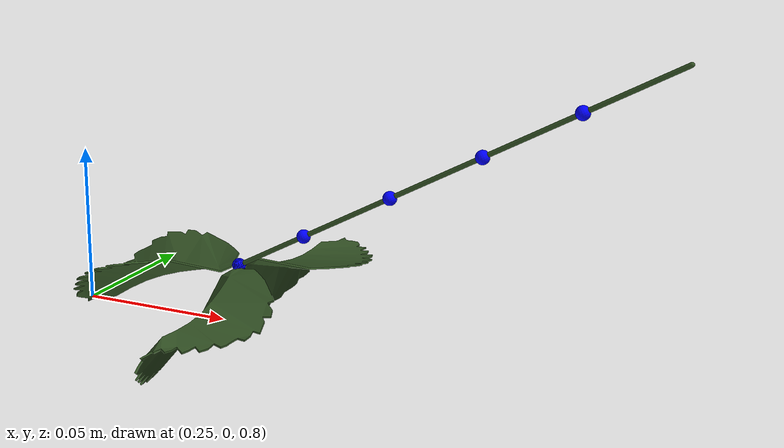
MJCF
<mujoco model="strawb_vine">
  <compiler angle="radian" meshdir="assets"/>

  <asset>

    <mesh name="leaf" file="leaf_1.obj" scale="0.4 0.4 0.4"/>
    <texture name="leaf_g1"   type="2d" file="textures/leaf_g1.png"/>
    <texture name="leaf_g2"   type="2d" file="textures/leaf_g2.png"/>
    <texture name="leaf_s1"   type="2d" file="textures/leaf_s1.png"/>
    <texture name="leaf_s2"   type="2d" file="textures/leaf_s2.png"/>
    <texture name="leaf_s3"   type="2d" file="textures/leaf_s3.png"/>
    <material name="leaf" texture="leaf_g1"/>
  </asset>

  <default>
    <default class="vine">
      <joint type="ball" stiffness="0.02" armature="0.0001" damping="0.01" actuatorfrclimited="false"/>
      <geom  type="capsule" size="0.0007" mass="0.0001"
             solref="0.001 1" solimp="0.97 0.995 0.0005 0.5 2"
             rgba="0.208 0.337 0.149 1"/>
    </default>
  </default>

  <worldbody>
    <!-- root at origin; rotate/place when attaching in the parent scene -->
    <body name="vine_root" pos="0.45 -0.03 0.9" euler="0 2.64 0">
      <joint class="vine" name="J_0"/>

      <!-- straight vine of 4 capsules -->
      <body name="seg_first">
        <geom class="vine" name="seg0" fromto="0 0 0  0.03 0 0"/>
        <site name="seg_first" pos="0 0 0" group="3"/>
        <body name="seg_1" pos="0.03 0 0">
          <joint class="vine" name="j1"/>
          <site name="joint_1" pos="0 0 0" rgba = "0 0 1 1" size="0.002"/>
          <geom  class="vine" name="seg1" fromto="0 0 0  0.03 0 0"/>
          <body name="seg_2" pos="0.03 0 0">
            <joint class="vine" name="j2"/>
            <site name="joint_2" pos="0 0 0" rgba = "0 0 1 1" size="0.002"/>
            <geom  class="vine" name="seg2" fromto="0 0 0  0.03 0 0"/>
            <body name="seg_last" pos="0.03 0 0">
              <joint class="vine" name="j_last"/>
              <site name="joint_last" pos="0 0 0" rgba = "0 0 1 1" size="0.002"/>
              <geom  class="vine" name="seg3" fromto="0 0 0  0.03 0 0"/>
              <site  name="seg_last" pos="0.03 0 0" group="3"/>
              <!-- petiole (capsule) and hub with 3 leaves -->
              <body name="petiole" pos="0.03 0 0">
                <joint class="vine" name="j_petiole" stiffness="0.01" damping="0.0005" armature="0.0001"/>
                <site name="petiole_joint_site" pos="0 0 0" rgba = "0 0 1 1" size="0.002"/>
                <geom class="vine" name="petiole_caps" fromto="0 0 0  0.024 0 0"/>
                <site name="petiole_site" pos="0.024 0 0" size="0.0012" rgba="0 0 1 1" group="3"/>
                <body name="hub" pos="0.024 0 0" euler="0 0 1.57">
                  <!-- Leaf A (+X) -->
                  <body name="leafA_body" pos="0.00 0 0">
                    <joint name="leafA_joint" type="ball" damping="0.0005" armature="0.0001" stiffness="0.01"/>
                    <site name="leafA_site" pos="0 0 0" rgba = "0 0 1 1" size="0.002"/>
                    <geom  name="leaf_A" type="mesh" mesh="leaf" material="leaf" mass="0.002" rgba="0.208 0.337 0.149 1"/>
                  </body>
                  <!-- Leaf B (+Y), roll 180°, yaw +90° -->
                  <body name="leafB_body" pos="0 0.00 0" euler="3.1415926 0 1.5707963">
                    <joint name="leafB_joint" type="ball" damping="0.0005" armature="0.0001" stiffness="0.01"/>
                    <site name="leafB_site" pos="0 0 0" rgba = "0 0 1 1" size="0.002"/>
                    <geom  name="leaf_B" type="mesh" mesh="leaf" material="leaf" mass="0.002" rgba="0.208 0.337 0.149 1"/>
                  </body>
                  <!-- Leaf C (−X), yaw 180° -->
                  <body name="leafC_body" pos="-0.00 0 0" euler="0 0 3.1415926">
                    <joint name="leafC_joint" type="ball" damping="0.0005" armature="0.0001" stiffness="0.01"/>
                    <site name="leafC_site" pos="0 0 0" rgba = "0 0 1 1" size="0.002"/>
                    <geom  name="leaf_C" type="mesh" mesh="leaf" material="leaf" mass="0.002" rgba="0.208 0.337 0.149 1"/>
                  </body>
                </body>
              </body>
            </body>
          </body>
        </body>
      </body>
      <!-- end chain -->

    </body>
  </worldbody>
</mujoco>
